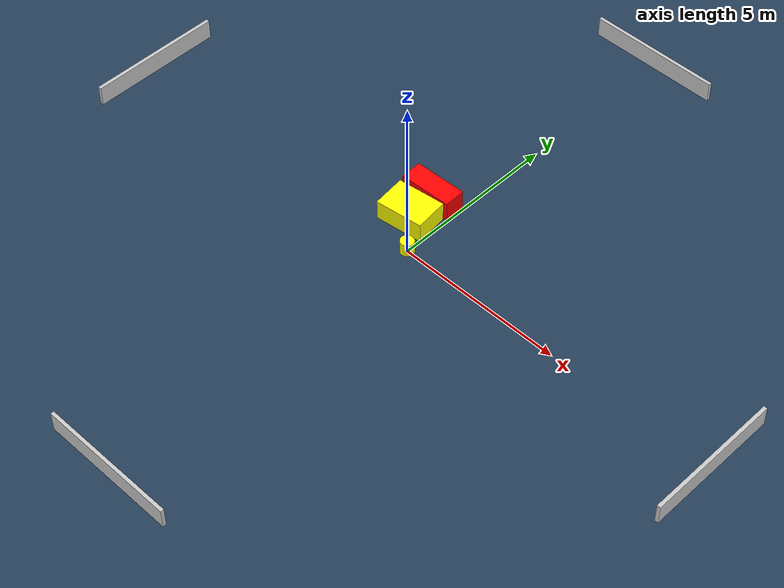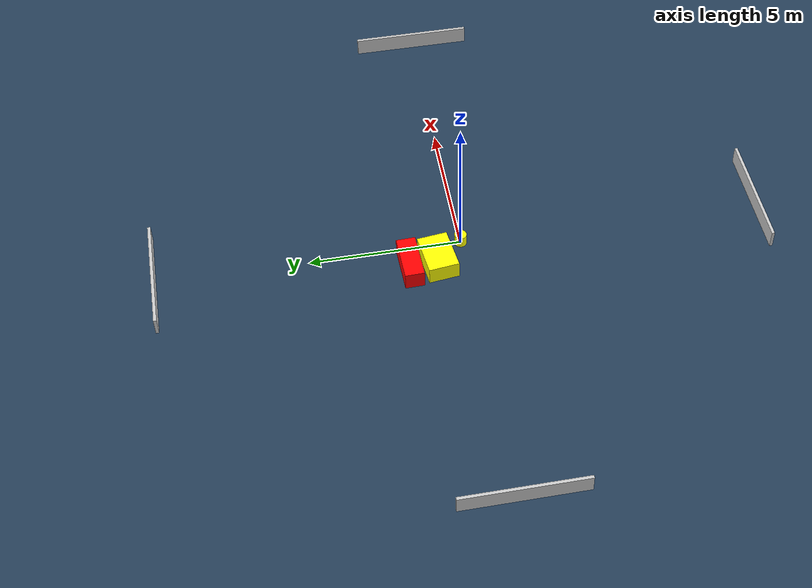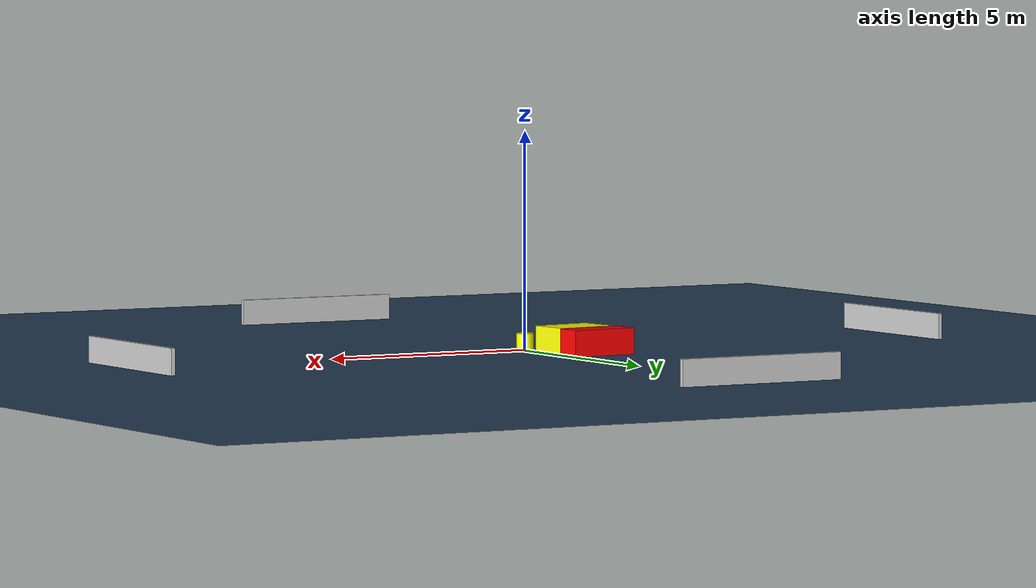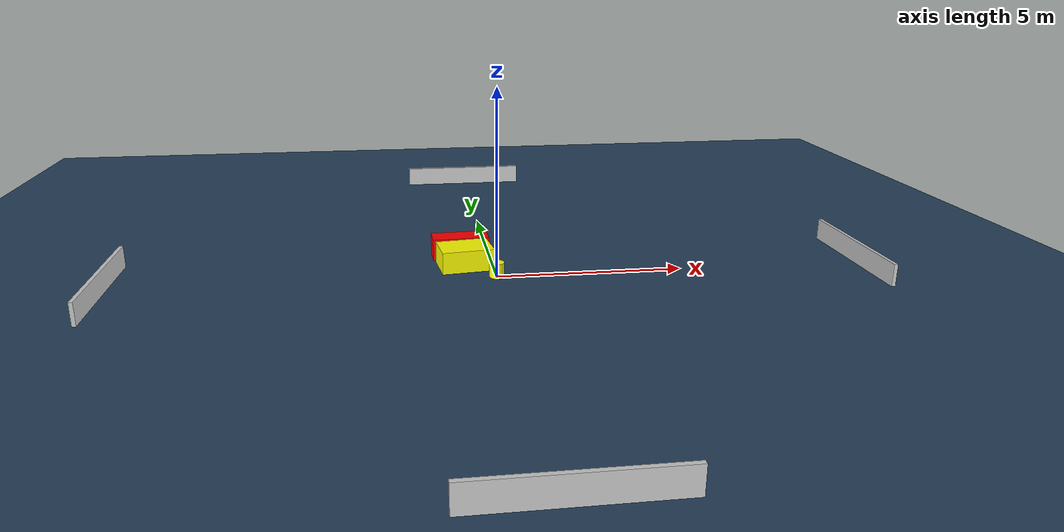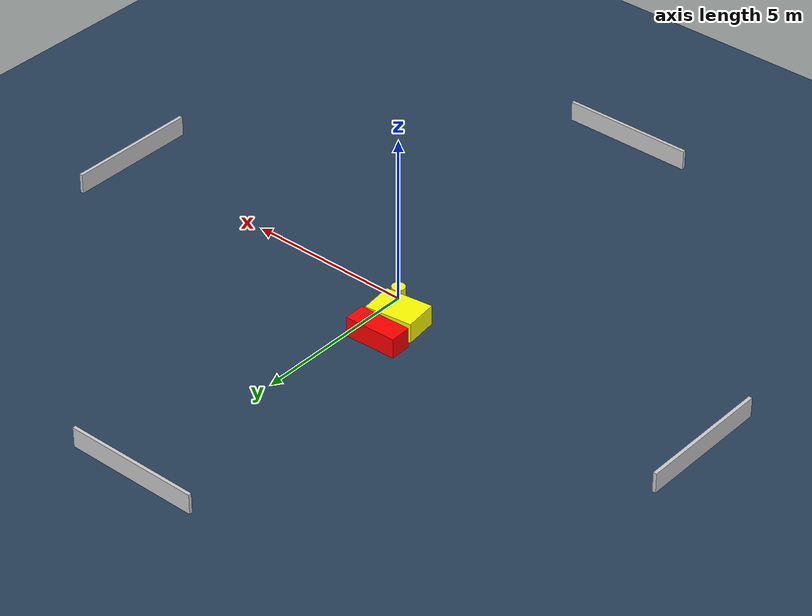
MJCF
<?xml version="1.0" ?>
<mujoco model="generated_environment">
  <option timestep="0.01" integrator="RK4" cone="elliptic"/>
  <default>
    <geom density="1"/>
  </default>
  <asset>
    <texture builtin="gradient" height="3072" name="skybox" rgb1="0.3 0.5 0.7" rgb2="0 0 0" type="skybox" width="512"/>
    <texture builtin="checker" height="300" name="groundplane" rgb1="0.2 0.3 0.4" rgb2="0.1 0.2 0.3" type="2d" width="300"/>
    <material name="groundplane" reflectance="0.2" texrepeat="5 5" texture="groundplane"/>
  </asset>
  <worldbody>
    <light dir="0 0 -1" directional="true" pos="0 0 1.5"/>
    <geom condim="3" friction="0.5 0.005 0.001" material="groundplane" name="floor" pos="0 0 0" size="0 0 0.05" type="plane"/>
    <body name="walls">
      <geom name="wall_1" condim="4" pos="-10.0 0.0 0.3" rgba="0.800000011920929 0.800000011920929 0.800000011920929 1.0" size="0.05 2.0 0.3" type="box"/>
      <geom name="wall_2" condim="4" pos="10.0 0.0 0.3" rgba="0.800000011920929 0.800000011920929 0.800000011920929 1.0" size="0.05 2.0 0.3" type="box"/>
      <geom name="wall_3" condim="4" pos="0.0 -10.0 0.3" rgba="0.800000011920929 0.800000011920929 0.800000011920929 1.0" size="2.0 0.05 0.3" type="box"/>
      <geom name="wall_4" condim="4" pos="0.0 10.0 0.3" rgba="0.800000011920929 0.800000011920929 0.800000011920929 1.0" size="2.0 0.05 0.3" type="box"/>
    </body>
    <body name="robot">
      <joint name="joint_x" type="slide" pos="0 0 0" axis="1 0 0"/>
      <joint name="joint_y" type="slide" pos="0 0 0" axis="0 1 0"/>
      <geom name="robot" type="cylinder" pos="0.0 0.0 0.2" size="0.2 0.2 0.0" mass="5.0" friction="1.0 0.005 0.0001" condim="4" rgba="1.0 1.0 0.0 1.0"/>
    </body>
    <body name="obstacle_1_movable">
      <geom name="obstacle_1_movable" condim="4" pos="-0.764998510063266 0.8843172387103722 0.3" euler="0 0 186.91982481100754" friction="0.0 0.005 0.001" rgba="1.0 1.0 0.0 1.0" size="0.7115151152979462 0.5024221065258974 0.3" type="box" mass="0.1"/>
      <joint type="free"/>
    </body>
    <body name="obstacle_2_static">
      <geom name="obstacle_2_static" condim="4" pos="-0.824080482449841 1.8002110058055238 0.3" euler="0 0 181.92532632473038" friction="0.0 0.005 0.001" rgba="1.0 0.0 0.0 1.0" size="0.7843256769619051 0.31864715193434745 0.3" type="box"/>
    </body>
  </worldbody>
  <actuator>
    <motor name="actuator_x" joint="joint_x" gear="1" ctrlrange="-1 1"/>
    <motor name="actuator_y" joint="joint_y" gear="1" ctrlrange="-1 1"/>
  </actuator>
</mujoco>
